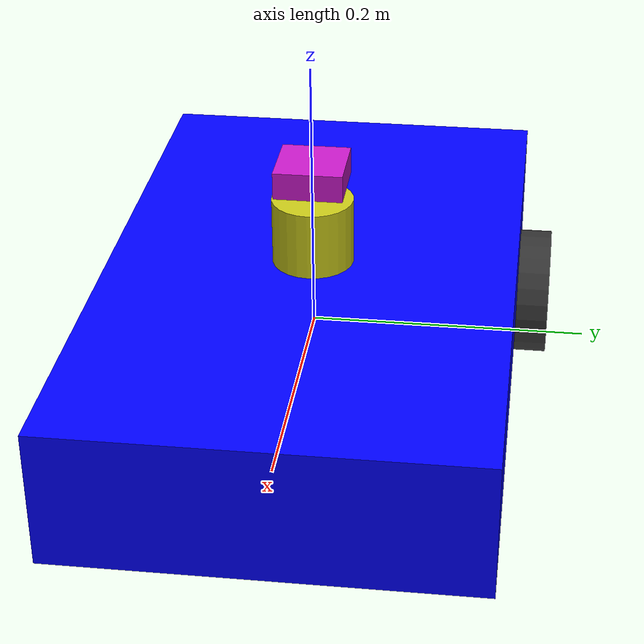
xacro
<?xml version="1.0"?>
<robot xmlns:xacro="http://www.ros.org/wiki/xacro" name="differential_car">

  <!-- 定义参数 -->
  <xacro:property name="body_length" value="0.5"/>
  <xacro:property name="body_width" value="0.3"/>
  <xacro:property name="body_height" value="0.1"/>
  <xacro:property name="body_mass" value="15"/>

  <xacro:property name="wheel_radius" value="0.05"/>
  <xacro:property name="wheel_width" value="0.05"/>
  <xacro:property name="wheel_mass" value="1"/>
  <xacro:property name="wheel_separation" value="0.3"/>
  <xacro:property name="wheel_base" value="0.3"/>

  <xacro:property name="caster_radius" value="0.05"/>
  <xacro:property name="caster_mass" value="2.0"/>
  <xacro:property name="caster_mount_length" value="0.02"/>
  <xacro:property name="caster_mount_radius" value="0.008"/>
  <xacro:property name="caster_mount_mass" value="0.3"/>

  <xacro:property name="lidar_height" value="0.075"/>
  <xacro:property name="imu_height" value="0.12"/>

  <!-- 材料定义 -->
  <material name="blue">
    <color rgba="0 0 1 1"/>
  </material>

  <material name="black">
    <color rgba="0.2 0.2 0.2 1"/>
  </material>

  <material name="green">
    <color rgba="0.2 0.8 0.2 1"/>
  </material>

  <material name="gray">
    <color rgba="0.5 0.5 0.5 1"/>
  </material>

  <material name="yellow">
    <color rgba="0.8 0.8 0.1 1"/>
  </material>

  <material name="purple">
    <color rgba="0.8 0.1 0.8 1"/>
  </material>

  <!-- 车体宏 -->
  <xacro:macro name="body_link" params="name">
    <link name="${name}">
      <visual>
        <geometry>
          <box size="${body_length} ${body_width} ${body_height}"/>
        </geometry>
        <material name="blue"/>
      </visual>
      <collision>
        <geometry>
          <box size="${body_length} ${body_width} ${body_height}"/>
        </geometry>
      </collision>
      <inertial>
        <mass value="${body_mass}"/>
        <origin xyz="0 0 0"/>
        <inertia ixx="0.15" ixy="0" ixz="0" iyy="0.15" iyz="0" izz="0.15"/>
      </inertial>
    </link>
  </xacro:macro>

  <!-- 轮子宏 -->
  <xacro:macro name="wheel_link" params="name color">
    <link name="${name}">
      <visual>
        <geometry>
          <cylinder length="${wheel_width}" radius="${wheel_radius}"/>
        </geometry>
        <material name="${color}"/>
      </visual>
      <collision>
        <geometry>
          <cylinder length="${wheel_width}" radius="${wheel_radius}"/>
        </geometry>
      </collision>
      <inertial>
        <mass value="${wheel_mass}"/>
        <origin xyz="0 0 0"/>
        <inertia ixx="0.01" ixy="0" ixz="0" iyy="0.01" iyz="0" izz="0.01"/>
      </inertial>
    </link>
  </xacro:macro>

  <!-- 万向轮宏 -->
  <xacro:macro name="caster_wheel" params="name">
    <!-- 万向轮本体（简化设计） -->
    <link name="${name}_wheel">
      <visual>
        <geometry>
          <sphere radius="${caster_radius}"/>
        </geometry>
        <material name="green"/>
      </visual>
      <collision>
        <geometry>
          <sphere radius="${caster_radius}"/>
        </geometry>
      </collision>
      <inertial>
        <mass value="${caster_mass}"/>
        <origin xyz="0 0 0"/>
        <inertia ixx="0.005" ixy="0" ixz="0" iyy="0.005" iyz="0" izz="0.005"/>
      </inertial>
    </link>

    <!-- 万向轮关节（使用球关节模拟万向轮效果） -->
    <joint name="${name}_joint" type="revolute">
      <parent link="base_link"/>
      <child link="${name}_wheel"/>
      <origin xyz="${wheel_base/2} 0 -${wheel_radius}" rpy="0 0 0"/>
      <axis xyz="0 0 1"/>
      <limit effort="1000" velocity="1000" lower="-0.1" upper="0.1"/>
      <dynamics damping="0.001" friction="0.001"/>
    </joint>
  </xacro:macro>

  <!-- 传感器宏 -->
  <xacro:macro name="lidar_link" params="name">
    <link name="${name}">
      <visual>
        <geometry>
          <cylinder length="0.05" radius="0.03"/>
        </geometry>
        <material name="yellow"/>
      </visual>
      <collision>
        <geometry>
          <cylinder length="0.05" radius="0.03"/>
        </geometry>
      </collision>
      <inertial>
        <mass value="0.5"/>
        <origin xyz="0 0 0"/>
        <inertia ixx="0.001" ixy="0" ixz="0" iyy="0.001" iyz="0" izz="0.001"/>
      </inertial>
    </link>
  </xacro:macro>

  <xacro:macro name="imu_link" params="name">
    <link name="${name}">
      <visual>
        <geometry>
          <box size="0.05 0.05 0.02"/>
        </geometry>
        <material name="purple"/>
      </visual>
      <collision>
        <geometry>
          <box size="0.05 0.05 0.02"/>
        </geometry>
      </collision>
      <inertial>
        <mass value="0.2"/>
        <origin xyz="0 0 0"/>
        <inertia ixx="0.0001" ixy="0" ixz="0" iyy="0.0001" iyz="0" izz="0.0001"/>
      </inertial>
    </link>
  </xacro:macro>

  <!-- 创建车体 -->
  <xacro:body_link name="base_link"/>

  <!-- 创建万向轮 -->
  <xacro:caster_wheel name="caster"/>

  <!-- 创建后轮 -->
  <xacro:wheel_link name="wheel_rl" color="black"/>
  <xacro:wheel_link name="wheel_rr" color="black"/>

  <!-- 创建传感器 -->
  <xacro:lidar_link name="lidar_link"/>
  <xacro:imu_link name="imu_link"/>

  <!-- 后轮驱动关节 -->
  <joint name="wheel_rl_drive_joint" type="continuous">
    <parent link="base_link"/>
    <child link="wheel_rl"/>
    <origin xyz="-${wheel_base/2} ${wheel_separation/2} -${wheel_radius}" rpy="1.5708 0 0"/>
    <axis xyz="0 0 1"/>
    <dynamics damping="0.2" friction="0.1"/>
  </joint>

  <joint name="wheel_rr_drive_joint" type="continuous">
    <parent link="base_link"/>
    <child link="wheel_rr"/>
    <origin xyz="-${wheel_base/2} -${wheel_separation/2} -${wheel_radius}" rpy="1.5708 0 0"/>
    <axis xyz="0 0 1"/>
    <dynamics damping="0.2" friction="0.1"/>
  </joint>

  <!-- 固定关节 -->
  <joint name="lidar_joint" type="fixed">
    <parent link="base_link"/>
    <child link="lidar_link"/>
    <origin xyz="0 0 ${lidar_height}" rpy="0 0 0"/>
  </joint>

  <joint name="imu_joint" type="fixed">
    <parent link="base_link"/>
    <child link="imu_link"/>
    <origin xyz="0 0 ${imu_height}" rpy="0 0 0"/>
  </joint>

  <gazebo reference="lidar_link">
    <sensor type="ray" name="lidar">
              <pose>0 0 0 0 0 0</pose>
        <visualize>true</visualize>
        <update_rate>10</update_rate>
        <ray>
          <scan>
            <horizontal>
              <samples>360</samples>
              <resolution>1</resolution>
              <min_angle>-3.14159</min_angle>
              <max_angle>3.14159</max_angle>
            </horizontal>
          </scan>
          <range>
            <min>0.08</min>
            <max>10.0</max>
            <resolution>0.01</resolution>
          </range>
          <noise>
            <type>gaussian</type>
            <mean>0.0</mean>
            <stddev>0.01</stddev>
          </noise>
        </ray>
              <plugin name="gazebo_ros_ray_sensor" filename="libgazebo_ros_ray_sensor.so">
          <ros>
            <namespace>/</namespace>
            <remapping>~/out:=scan</remapping>
          </ros>
          <output_type>sensor_msgs/LaserScan</output_type>
          <frame_name>lidar_link</frame_name>
        </plugin>
    </sensor>
  </gazebo>

  <gazebo reference="imu_link">
    <sensor type="imu" name="imu_sensor">
      <update_rate>50</update_rate>
      <always_on>true</always_on>
      <visualize>false</visualize>
      <plugin name="gazebo_ros_imu_sensor" filename="libgazebo_ros_imu_sensor.so">
        <ros>
          <namespace>/</namespace>
          <remapping>~/out:=imu</remapping>
        </ros>
        <frame_name>imu_link</frame_name>
      </plugin>
    </sensor>
  </gazebo>

  <gazebo>
    <plugin name="differential_drive_controller" filename="libgazebo_ros_diff_drive.so">
      <ros>
        <namespace>/</namespace>
      </ros>
      <left_joint>wheel_rl_drive_joint</left_joint>
      <right_joint>wheel_rr_drive_joint</right_joint>
      <wheel_separation>${wheel_separation}</wheel_separation>
      <wheel_diameter>${wheel_radius*2}</wheel_diameter>
      <max_wheel_torque>20</max_wheel_torque>
      <max_wheel_acceleration>1.0</max_wheel_acceleration>
      <publish_odom>true</publish_odom>
      <publish_odom_tf>true</publish_odom_tf>
      <publish_wheel_tf>true</publish_wheel_tf>
      <odometry_frame>odom</odometry_frame>
      <robot_base_frame>base_link</robot_base_frame>
      <command_topic>/cmd_vel</command_topic>
      <odometry_topic>/odom</odometry_topic>
      <odometry_source>1</odometry_source>
      <update_rate>50</update_rate>
    </plugin>
  </gazebo>

  <!-- 物理属性 -->
  <gazebo reference="caster_wheel">
    <material>Gazebo/Green</material>
    <mu1>0.01</mu1>
    <mu2>0.005</mu2>
    <kp>100000.0</kp>
    <kd>0.01</kd>
    <minDepth>0.001</minDepth>
    <maxVel>1.0</maxVel>
  </gazebo>

  <gazebo reference="wheel_rl">
    <material>Gazebo/Black</material>
    <mu1>1.5</mu1>
    <mu2>1.0</mu2>
    <kp>100000.0</kp>
    <kd>1.0</kd>
    <minDepth>0.001</minDepth>
    <maxVel>1.0</maxVel>
    <fdir1>1 0 0</fdir1>
  </gazebo>

  <gazebo reference="wheel_rr">
    <material>Gazebo/Black</material>
    <mu1>1.5</mu1>
    <mu2>1.0</mu2>
    <kp>100000.0</kp>
    <kd>1.0</kd>
    <minDepth>0.001</minDepth>
    <maxVel>1.0</maxVel>
    <fdir1>1 0 0</fdir1>
  </gazebo>

</robot>
